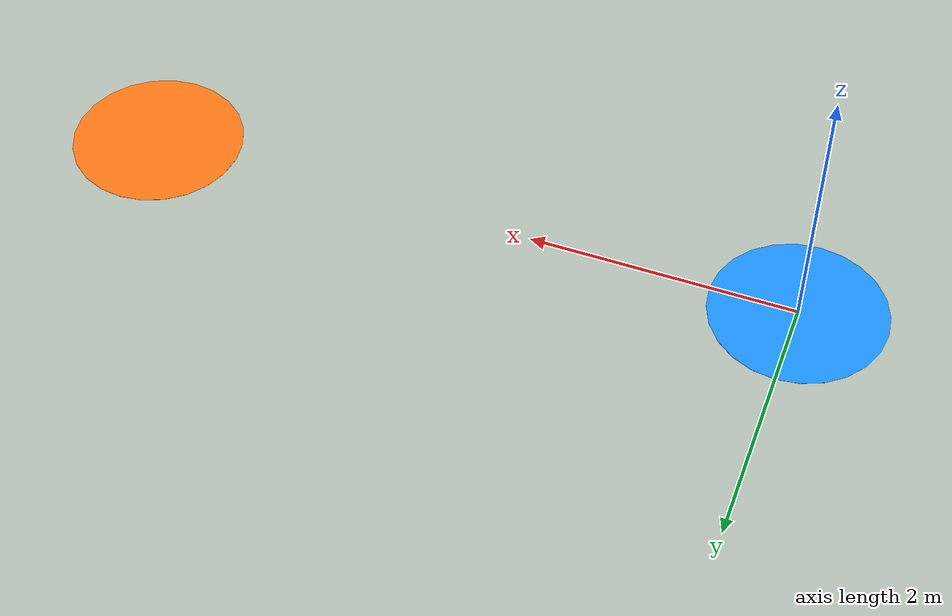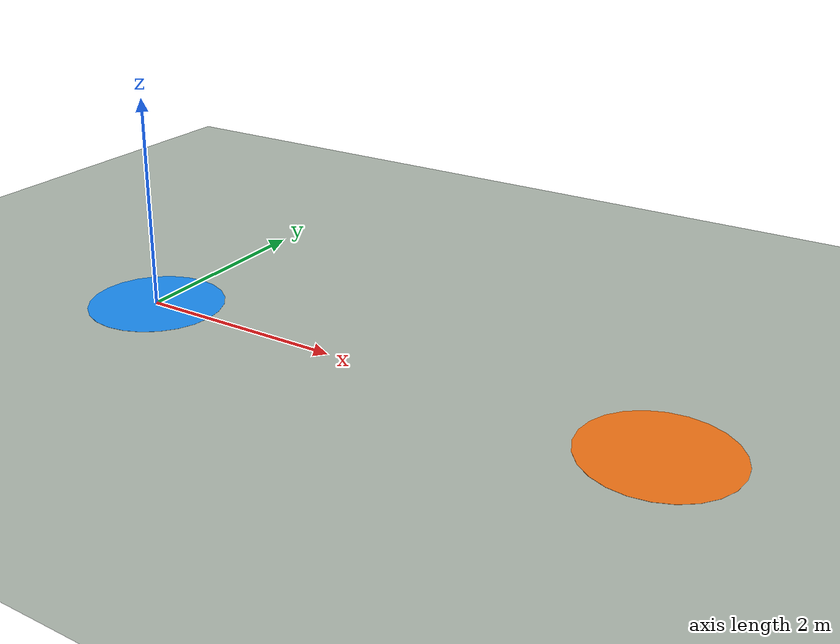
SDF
<sdf version='1.9'>
  <world name='p450_visual'>
    <physics type='ode'>
      <max_step_size>0.004</max_step_size>
      <real_time_factor>1.0</real_time_factor>
      <real_time_update_rate>250</real_time_update_rate>
    </physics>

    <plugin name='gz::sim::systems::Physics' filename='gz-sim-physics-system'/>
    <plugin name='gz::sim::systems::UserCommands' filename='gz-sim-user-commands-system'/>
    <plugin name='gz::sim::systems::SceneBroadcaster' filename='gz-sim-scene-broadcaster-system'/>
    <plugin name='gz::sim::systems::Contact' filename='gz-sim-contact-system'/>
    <plugin name='gz::sim::systems::Imu' filename='gz-sim-imu-system'/>
    <plugin name='gz::sim::systems::AirPressure' filename='gz-sim-air-pressure-system'/>
    <plugin name='gz::sim::systems::Sensors' filename='gz-sim-sensors-system'>
      <render_engine>ogre2</render_engine>
    </plugin>

    <gui fullscreen='false'>
      <plugin name='P450 visual flight' filename='GzScene3D'>
        <gz-gui>
          <title>P450 visual flight</title>
          <property type='bool' key='showTitleBar'>0</property>
          <property type='string' key='state'>docked</property>
        </gz-gui>
        <engine>ogre2</engine>
        <scene>scene</scene>
        <ambient_light>0.6 0.6 0.6</ambient_light>
        <background_color>0.82 0.9 0.98</background_color>
        <camera_pose>2.5 -4.8 2.3 0 0.32 1.57</camera_pose>
      </plugin>
      <plugin name='World control' filename='WorldControl'>
        <gz-gui>
          <title>World control</title>
          <property type='bool' key='showTitleBar'>0</property>
          <property type='bool' key='resizable'>0</property>
          <property type='double' key='height'>72</property>
          <property type='double' key='width'>121</property>
          <property type='double' key='z'>1</property>
          <property type='string' key='state'>floating</property>
          <anchors target='P450 visual flight'>
            <line own='left' target='left'/>
            <line own='bottom' target='bottom'/>
          </anchors>
        </gz-gui>
        <play_pause>1</play_pause>
        <step>1</step>
        <start_paused>1</start_paused>
      </plugin>
      <plugin name='World stats' filename='WorldStats'>
        <gz-gui>
          <title>World stats</title>
          <property type='bool' key='showTitleBar'>0</property>
          <property type='bool' key='resizable'>0</property>
          <property type='double' key='height'>110</property>
          <property type='double' key='width'>290</property>
          <property type='double' key='z'>1</property>
          <property type='string' key='state'>floating</property>
          <anchors target='P450 visual flight'>
            <line own='right' target='right'/>
            <line own='bottom' target='bottom'/>
          </anchors>
        </gz-gui>
        <sim_time>1</sim_time>
        <real_time>1</real_time>
        <real_time_factor>1</real_time_factor>
        <iterations>1</iterations>
      </plugin>
      <plugin name='Entity tree' filename='EntityTree'/>
    </gui>

    <gravity>0 0 -9.8</gravity>
    <magnetic_field>6e-06 2.3e-05 -4.2e-05</magnetic_field>
    <atmosphere type='adiabatic'/>
    <scene>
      <grid>true</grid>
      <ambient>0.45 0.45 0.45 1</ambient>
      <background>0.7 0.8 0.92 1</background>
      <shadows>true</shadows>
    </scene>

    <model name='ground_plane'>
      <static>true</static>
      <link name='link'>
        <collision name='collision'>
          <geometry>
            <plane>
              <normal>0 0 1</normal>
              <size>100 100</size>
            </plane>
          </geometry>
          <surface>
            <friction><ode/></friction>
          </surface>
        </collision>
        <visual name='visual'>
          <geometry>
            <plane>
              <normal>0 0 1</normal>
              <size>100 100</size>
            </plane>
          </geometry>
          <material>
            <ambient>0.68 0.72 0.68 1</ambient>
            <diffuse>0.68 0.72 0.68 1</diffuse>
            <specular>0.15 0.15 0.15 1</specular>
          </material>
        </visual>
      </link>
    </model>

    <model name='start_marker'>
      <static>true</static>
      <pose>0 0 0.001 0 0 0</pose>
      <link name='link'>
        <visual name='visual'>
          <geometry><cylinder><radius>0.65</radius><length>0.002</length></cylinder></geometry>
          <material>
            <ambient>0.1 0.55 0.95 1</ambient>
            <diffuse>0.1 0.55 0.95 1</diffuse>
          </material>
        </visual>
      </link>
    </model>

    <model name='forward_marker'>
      <static>true</static>
      <!-- PX4 local +Y maps to Gazebo world +X for this 90-degree heading. -->
      <pose>5 0 0.001 0 0 0</pose>
      <link name='link'>
        <visual name='visual'>
          <geometry><cylinder><radius>0.65</radius><length>0.002</length></cylinder></geometry>
          <material>
            <ambient>0.95 0.45 0.08 1</ambient>
            <diffuse>0.95 0.45 0.08 1</diffuse>
          </material>
        </visual>
      </link>
    </model>

    <model name='flight_recorder_camera'>
      <static>true</static>
      <!-- One route-wide view: both the takeoff point and the 5 m forward goal remain visible. -->
      <pose>2.5 -5 3.0 0 0.414 1.571</pose>
      <link name='link'>
        <sensor name='camera' type='camera'>
          <camera>
            <horizontal_fov>1.2</horizontal_fov>
            <image>
              <width>1280</width>
              <height>720</height>
            </image>
            <clip>
              <near>0.1</near>
              <far>100</far>
            </clip>
          </camera>
          <always_on>true</always_on>
          <update_rate>60</update_rate>
          <visualize>false</visualize>
          <topic>p450_visual_camera</topic>
          <plugin filename='gz-sim-camera-video-recorder-system'
                  name='gz::sim::systems::CameraVideoRecorder'>
            <service>p450_visual_camera/record_video</service>
            <fps>60</fps>
            <bitrate>12000000</bitrate>
          </plugin>
        </sensor>
      </link>
    </model>

    <light name='sun' type='directional'>
      <pose>0 0 500 0 0 0</pose>
      <cast_shadows>true</cast_shadows>
      <intensity>1</intensity>
      <direction>-0.25 0.35 -0.9</direction>
      <diffuse>0.95 0.95 0.95 1</diffuse>
      <specular>0.25 0.25 0.25 1</specular>
      <attenuation>
        <range>2000</range>
        <linear>0</linear>
        <constant>1</constant>
        <quadratic>0</quadratic>
      </attenuation>
    </light>
  </world>
</sdf>
